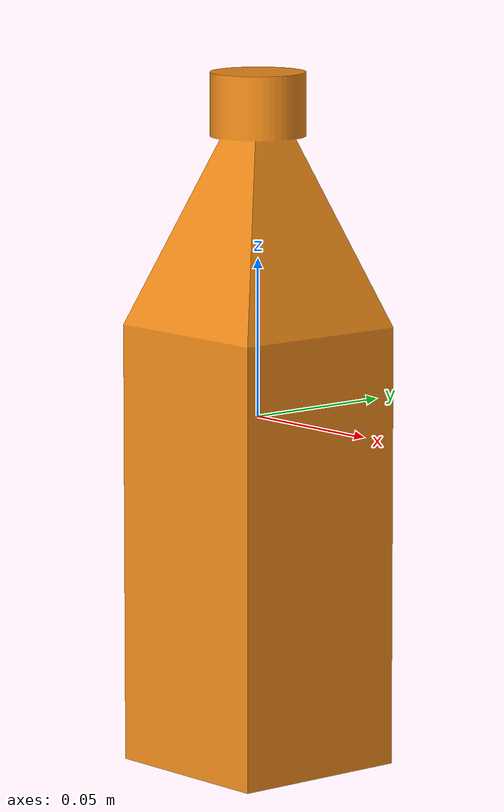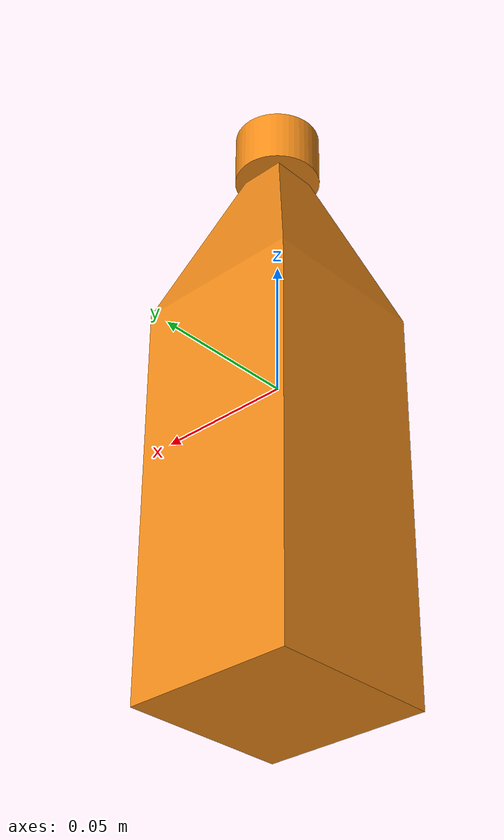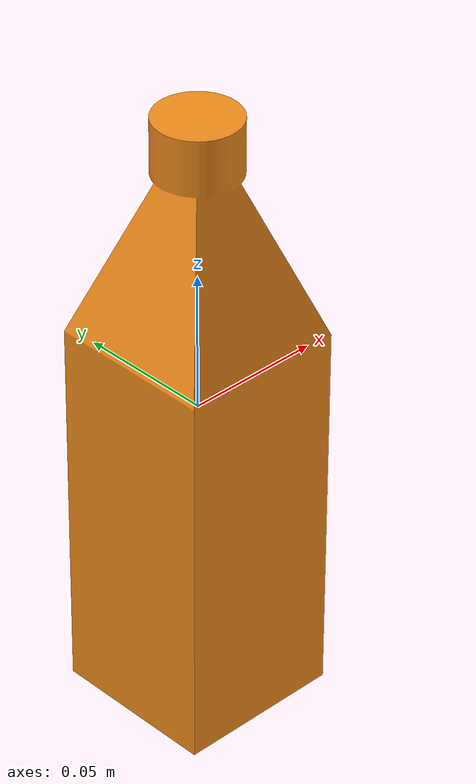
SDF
<?xml version="1.0" ?>
<sdf version="1.6">
  <model name="bottle">
  <pose>0 0 0 0 0 0</pose>
    <link name="bottle">
      <pose>0 0 0 0 0 0</pose>
      <visual name="bottle_visual">
        <geometry><mesh><uri>model://bottle/meshes/bottle.stl</uri></mesh></geometry>
        <material>
        <script>
          <uri>file://media/materials/scripts/gazebo.material</uri>
          <name>Gazebo/Orange</name>
        </script>
        </material>
      </visual>
      <collision name="bottle_collision">
        <geometry><mesh><uri>model://bottle/meshes/bottle.stl</uri></mesh></geometry>
      <surface>
          <friction>
            <ode>
              <mu>1.0</mu>
              <mu2>1.0</mu2>
            </ode>
          </friction>
        </surface>
      </collision>
      <inertial>
        <mass>0.6</mass>
        <!-- とりあえず動かす用の“仮”慣性（後で詰める） -->
        <inertia>
          <ixx>0.002</ixx>
          <iyy>0.002</iyy>
          <izz>0.002</izz>
          <ixy>0.0</ixy>
          <ixz>0.0</ixz>
          <iyz>0.0</iyz>
        </inertia>
      </inertial>
    </link>

  </model>
</sdf>
